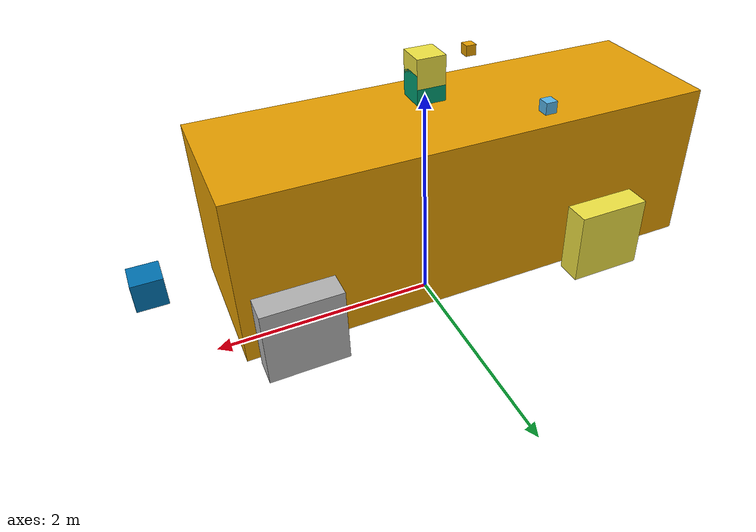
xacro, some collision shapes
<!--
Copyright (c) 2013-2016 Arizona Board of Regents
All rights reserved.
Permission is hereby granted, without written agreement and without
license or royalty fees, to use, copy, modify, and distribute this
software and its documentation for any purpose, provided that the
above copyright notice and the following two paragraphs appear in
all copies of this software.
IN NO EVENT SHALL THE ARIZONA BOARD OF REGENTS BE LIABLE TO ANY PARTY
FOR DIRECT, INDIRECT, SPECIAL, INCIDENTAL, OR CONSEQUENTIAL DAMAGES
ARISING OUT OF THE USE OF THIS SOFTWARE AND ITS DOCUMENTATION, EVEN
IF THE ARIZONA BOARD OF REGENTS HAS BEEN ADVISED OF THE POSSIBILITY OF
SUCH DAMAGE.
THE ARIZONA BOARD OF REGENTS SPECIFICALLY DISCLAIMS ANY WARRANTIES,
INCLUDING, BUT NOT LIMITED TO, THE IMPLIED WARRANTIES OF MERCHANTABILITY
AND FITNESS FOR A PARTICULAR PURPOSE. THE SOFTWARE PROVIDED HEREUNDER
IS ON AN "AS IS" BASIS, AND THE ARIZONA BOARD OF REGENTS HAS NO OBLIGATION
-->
<?xml version="1.0" ?>

<!-- Inertial parameters selected with the help of
http://www.car-engineer.com/vehicle-inertia-calculation-tool/
-->

<robot name="$(arg roboname)" xmlns:xacro="http://www.ros.org/wiki/xacro">

  <xacro:arg name="camera_left" default="true"/>
  <xacro:arg name="camera_right" default="true"/>
  <xacro:arg name="velodyne_points" default="true"/>
  <xacro:arg name="front_laser_points" default="true"/>

  <xacro:property name="PI" value="3.1415926835897931"/>
  <xacro:property name="base_height" value="1.0639"/>
  <xacro:property name="base_collision_height" value="1.3639"/>
  <xacro:property name="base_mass" value="2050"/>
  <xacro:property name="base_mass_ixx" value="647"/>
  <xacro:property name="base_mass_iyy" value="3291"/>
  <xacro:property name="base_mass_izz" value="3360"/>
  <xacro:property name="base_mass_ixz" value="-31"/>
  <xacro:property name="tyre_x" value="1.41"/>
  <xacro:property name="tyre_y" value="0.765"/>
  <xacro:property name="tyre_length" value="0.229"/>
  <xacro:property name="tyre_r" value="0.66"/>
  <xacro:property name="tyre_radius" value="0.356"/>
  <xacro:property name="tyre_mass" value="40"/>

  <xacro:property name="tyre_mass_ixx" value="2.0"/>
  <xacro:property name="tyre_mass_iyy" value="2.0"/>
  <xacro:property name="tyre_mass_izz" value="2.0"/>

  <xacro:property name="car_height" value="1.4478"/>
  <xacro:property name="car_to_bumper" value="2.4"/>
  <xacro:property name="front_bumper_height" value="${car_height/2}"/>
  <xacro:property name="sensor_box" value="0.25"/>
  <xacro:property name="sensor_box2" value="0.01"/>
  <xacro:property name="camera_box" value="0.1"/>
  <xacro:property name="tyre_height" value="-0.696"/>
  <xacro:property name="str_length" value="0.01"/>
  <xacro:property name="str_radius" value="0.1"/>
  <xacro:property name="str_angle" value="0.6"/>
  <xacro:property name="car_width" value="1.301"/>
  <xacro:property name="front_laser_points" value="$(arg front_laser_points)"/>
  <xacro:property name="velodyne_points" value="$(arg velodyne_points)"/>
  <xacro:property name="camera_right" value="$(arg camera_right)"/>
  <xacro:property name="camera_left" value="$(arg camera_left)"/>
  <xacro:property name="tyre_origin">
	<origin xyz="0 0 0" rpy="${PI/2} 0 0"/>
  </xacro:property>
  <xacro:property name="tyre_origin_2">
        <origin xyz="0 0 0" rpy="0 0 ${PI/2}"/>
  </xacro:property>
  <xacro:property name="tyre_origin_3">
        <origin xyz="0 0 0" rpy="0 0 ${-PI/2}"/>
  </xacro:property>

	<xacro:include filename="$(find catvehicle)/urdf/catvehicle.gazebo"/>
    <xacro:if value="${front_laser_points}">
    	<xacro:include filename="$(find catvehicle)/urdf/catvehicle_front_laser_points.gazebo"/>
    </xacro:if>
    <xacro:if value="${velodyne_points}">
      <!-- You can pass parameters in order to change the max/min
           horizontal angles of the velodyne sensors. These are interpreted
           in the velodyne_points gazebo file -->
      <xacro:arg name="velodyne_min_angle" default="-0.4"/>
      <xacro:arg name="velodyne_max_angle" default="0.4"/>
      <xacro:property name="velodyne_min_angle" value="$(arg velodyne_min_angle)"/>
      <xacro:property name="velodyne_max_angle" value="$(arg velodyne_max_angle)"/>

    	<xacro:include filename="$(find catvehicle)/urdf/catvehicle_velodyne_points.gazebo"/>
    </xacro:if>
    <xacro:if value="${camera_right}">
    	<xacro:include filename="$(find catvehicle)/urdf/catvehicle_right_camera.gazebo"/>
    </xacro:if>
    <xacro:if value="${camera_left}">
    	<xacro:include filename="$(find catvehicle)/urdf/catvehicle_left_camera.gazebo"/>
    </xacro:if>

<!--Car Body-->

<link name="base_link">
    <collision>
         <origin xyz="0 0 ${base_collision_height}" rpy="0 0 0"/>
           <geometry>
            <box size="4.192 ${car_width} ${car_height}"/>
        </geometry>
      </collision>
     <visual>
        <origin xyz="-0.25 0 ${base_height + 0.05}" rpy="0 0 0"/>
        <geometry>
          <box size="4.192 ${car_width} ${car_height}"/>
        </geometry>
     </visual>
</link>

<joint name="inertial_joint" type="fixed">
      <parent link="base_link"/>
      <child link="main_mass"/>
      <origin xyz="0 0 0" rpy="0 0 0"/>
</joint>

<link name="main_mass" type="fixed">
     <parent link="inertial_joint"/>
     <inertial>
        <origin xyz="0 0 ${base_height}" rpy="0 0 0"/>
        <mass value="${base_mass}"/>
        <inertia
          ixx="${base_mass_ixx}"  ixy="0.000000" ixz="${base_mass_ixz}"
          iyy="${base_mass_iyy}" iyz="0.000000"
          izz="${base_mass_izz}"/>
      </inertial>
</link>

<!--Back Right Wheel-->

<joint name="back_right_wheel_joint" type="continuous">
      <parent link="base_link"/>
      <child link="back_right_wheel_link"/>
      <origin xyz="${-tyre_x} ${-tyre_y} ${tyre_r}" rpy="0 0 0"/>
      <axis xyz="0 1 0"/>
      <dynamics damping="0.1"/>
     <limit effort="100000" velocity="10000" />
      <joint_properties damping="0.0" friction="0.0" />
</joint>

<link name="back_right_wheel_link">
     <collision>
      <xacro:insert_block name="tyre_origin"/>
        <geometry>
         <cylinder length="${tyre_length}" radius="${tyre_radius}"/>
        </geometry>
     </collision>

     <visual>
         <origin xyz="0 0 0" rpy="${PI/2} 0 0"/>
      <xacro:insert_block name="tyre_origin_3"/>
        <geometry>
          <box size="${tyre_r} ${tyre_r} ${tyre_length}"/>
      <scale xyz="1.2 1 1"/>
        </geometry>
      </visual>

      <inertial>
        <origin xyz="0 0 0" rpy="0 0 0"/>
        <mass value="${tyre_mass}"/>
        <inertia
          ixx="${tyre_mass_ixx}"  ixy="0.000000"  ixz="0.000000"
          iyy="${tyre_mass_iyy}"  iyz="0.000000"
          izz="${tyre_mass_izz}"/>
      </inertial>
</link>

<!--Back Left Wheel-->

<joint name="back_left_wheel_joint" type="continuous">
      <parent link="base_link"/>
      <child link="back_left_wheel_link"/>
      <origin xyz="${-tyre_x} ${tyre_y} ${tyre_r}" rpy="0 0 0"/>
      <axis xyz="0 1 0"/>
      <dynamics damping="0.1"/>
      <limit effort="100000" velocity="10000" />
      <joint_properties damping="0.0" friction="0.0" />
</joint>

<link name="back_left_wheel_link">
     <collision>
      <xacro:insert_block name="tyre_origin"/>
        <geometry>
         <cylinder length="0.229" radius="${tyre_radius}"/>
        </geometry>
     </collision>

     <visual>
         <origin xyz="0 0 0" rpy="${PI/2} 0 0"/>
      <xacro:insert_block name="tyre_origin_2"/>
        <geometry>
          <box size="${tyre_r} ${tyre_r} ${tyre_length}"/>
          <scale xyz="1.2 1 1"/>
        </geometry>
      </visual>

      <inertial>
        <origin xyz="0 0 0" rpy="0 0 0"/>
        <mass value="${tyre_mass}"/>
        <inertia
          ixx="${tyre_mass_ixx}"  ixy="0.000000"  ixz="0.000000"
          iyy="${tyre_mass_iyy}"  iyz="0.000000"
          izz="${tyre_mass_izz}"/>
      </inertial>
</link>

<!--Right Steering-->

<joint name="front_right_steering_joint" type="revolute">
	<parent link="base_link"/>
	<child link="front_right_steering_link"/>
	<origin xyz="${tyre_x} ${-car_width/2 - str_length/2} ${tyre_r}" rpy="0 0 0"/>
        <axis xyz="0 0 1"/>
	<limit effort="1000.0" lower="${-str_angle}" upper="${str_angle}" velocity="10.0"/>
</joint>

<link name="front_right_steering_link">
	<collision>
	      <xacro:insert_block name="tyre_origin"/>
	        <geometry>
        	 <cylinder length="${str_length}" radius="${str_radius}"/>
       		</geometry>
	</collision>

	<visual>
              <xacro:insert_block name="tyre_origin"/>
                <geometry>
                 <cylinder length="${str_length}" radius="${str_radius}"/>
                </geometry>
	</visual>

      <inertial>
        <origin xyz="0 0 0" rpy="0 0 0"/>
        <mass value="10.00"/>
        <inertia
          ixx="0.4"  ixy="0.000000"  ixz="0.000000"
          iyy="0.6"  iyz="0.000000"
          izz="0.4"/>
      </inertial>
</link>

<!--Right Front Wheel-->

<joint name="front_right_wheel_joint" type="continuous">
      <parent link="front_right_steering_link"/>
      <child link="front_right_wheel_link"/>
      <origin xyz="0 ${-str_length/2 - tyre_length/2} 0" rpy="0 0 0"/>
      <axis xyz="0 1 0"/>
      <dynamics damping="0.1"/>
     <limit effort="1000000" velocity="10000" />
      <joint_properties damping="0.0" friction="0.0" />
</joint>

<link name="front_right_wheel_link">
     <collision>
      <xacro:insert_block name="tyre_origin"/>
        <geometry>
         <cylinder length="${tyre_length}" radius="${tyre_radius}"/>
	</geometry>
     </collision>

     <visual>
         <origin xyz="0 0 0" rpy="${PI/2} 0 0"/>
      <xacro:insert_block name="tyre_origin_3"/>
        <geometry>
          <box size="${tyre_r} ${tyre_r} ${tyre_length}"/>
        <scale xyz="1.2 1 1"/>
       </geometry>
      </visual>

      <inertial>
        <origin xyz="0 0 0" rpy="0 0 0"/>
        <mass value="${tyre_mass}"/>
        <inertia
          ixx="${tyre_mass_ixx}"  ixy="0.000000"  ixz="0.000000"
          iyy="${tyre_mass_iyy}"  iyz="0.000000"
          izz="${tyre_mass_izz}"/>
      </inertial>
</link>

<!--Left Steering-->

<joint name="front_left_steering_joint" type="revolute">
        <parent link="base_link"/>
        <child link="front_left_steering_link"/>
        <origin xyz="${tyre_x} ${car_width/2 + str_length/2} ${tyre_r}" rpy="0 0 0"/>
        <axis xyz="0 0 1"/>
        <limit effort="1000.0" lower="${-str_angle}" upper="${str_angle}" velocity="10.0"/>
</joint>

<link name="front_left_steering_link">
      <parent link="base_link"/>
        <collision>
              <xacro:insert_block name="tyre_origin"/>
                <geometry>
                 <cylinder length="${str_length}" radius="${str_radius}"/>
                </geometry>
        </collision>

        <visual>
              <xacro:insert_block name="tyre_origin"/>
                <geometry>
                 <cylinder length="${str_length}" radius="${str_radius}"/>
                </geometry>
        </visual>

      <inertial>
        <origin xyz="0 0 0" rpy="0 0 0"/>
        <mass value="10.00"/>
        <inertia
          ixx="0.4"  ixy="0.000000"  ixz="0.000000"
          iyy="0.6"  iyz="0.000000"
          izz="0.4"/>
      </inertial>
</link>

<!--Left Front Wheel-->

<joint name="front_left_wheel_joint" type="continuous">
      <parent link="front_left_steering_link"/>
      <child link="front_left_wheel_link"/>
      <origin xyz="0 ${str_length/2 + tyre_length/2} 0" rpy="0 0 0"/>
      <axis xyz="0 1 0"/>

      <dynamics damping="0.1"/>
      <limit effort="1000000" velocity="10000" />
      <joint_properties damping="0.0" friction="0.0" />

</joint>

<link name="front_left_wheel_link">
     <parent link="front_left_wheel_joint"/>
     <collision>
	<origin xyz="0 0 0" rpy="${PI/2} 0 0"/>
        <geometry>
         <cylinder length="0.229" radius="${tyre_radius}"/>
        </geometry>
     </collision>

     <visual>
      <origin xyz="0 0 0" rpy="${PI/2} 0 0"/>
      <xacro:insert_block name="tyre_origin_2"/>
       <geometry>
          <box size="${tyre_r} ${tyre_r} ${tyre_length}"/>
          <scale xyz="1.2 1 1"/>
       </geometry>
      </visual>

      <inertial>
        <origin xyz="0 0 0" rpy="0 0 0"/>
        <mass value="${tyre_mass}"/>
        <inertia
          ixx="${tyre_mass_ixx}"  ixy="0.000000"  ixz="0.000000"
          iyy="${tyre_mass_iyy}"  iyz="0.000000"
          izz="${tyre_mass_izz}"/>
      </inertial>
</link>

<!-- Cameras-->

<joint name="camera_right_joint" type="fixed">
<origin xyz="-0.75 -${car_width/2} ${0.725 + camera_box/2 + 1.25}" rpy="0 0 -${PI/2}"/>
	<axis xyz="0 0 1"/>
	<parent link="base_link"/>
	<child link="camera_right_link"/>
</joint>

<link name="camera_right_link">
	<collision>
	  <origin xyz="0 0 0" rpy="0 0 0"/>
	  <geometry>
	   <box size="${camera_box} ${camera_box} ${camera_box}"/>
	  </geometry>
	</collision>

	<visual>
	  <origin xyz="0 0 0" rpy="0 0 0"/>
	  <geometry>
	  <box size="${camera_box} ${camera_box} ${camera_box}"
/>
          </geometry>
	</visual>

    <inertial>
      <mass value="1e-5" />
      <origin xyz="0 0 0" rpy="0 0 0"/>
      <inertia ixx="1e-6" ixy="0" ixz="0" iyy="1e-6" iyz="0" izz="1e-6" />
    </inertial>
</link>

<joint name="camera_left_joint" type="fixed">
<origin xyz="-0.75 ${car_width/2} ${0.725 + camera_box/2 + 1.25}" rpy="0 0 ${PI/2}"/>
	<axis xyz="0 0 1"/>
	<parent link="base_link"/>
	<child link="camera_left_link"/>
</joint>

<link name="camera_left_link">
	<collision>
	  <origin xyz="0 0 0" rpy="0 0 0"/>
	  <geometry>
	   <box size="${camera_box} ${camera_box} ${camera_box}"/>
	  </geometry>
	</collision>

	<visual>
	  <origin xyz="0 0 0" rpy="0 0 0"/>
	  <geometry>
	  <box size="${camera_box} ${camera_box} ${camera_box}"
/>
          </geometry>
	</visual>

    <inertial>
      <mass value="1e-5" />
      <origin xyz="0 0 0" rpy="0 0 0"/>
      <inertia ixx="1e-6" ixy="0" ixz="0" iyy="1e-6" iyz="0" izz="1e-6" />
    </inertial>
</link>

<joint name="camera_joint" type="fixed">
<origin xyz="0 0 ${0.725 + sensor_box/2 + 1.25}" rpy="0 0 0"/>
	<axis xyz="0 0 1"/>
	<parent link="base_link"/>
	<child link="camera_link"/>
</joint>

<link name="camera_link">
	<collision>
	  <origin xyz="0 0 0" rpy="0 0 0"/>
	  <geometry>
	   <box size="${sensor_box} ${sensor_box} ${sensor_box}"/>
	  </geometry>
	</collision>

	<visual>
	  <origin xyz="0 0 0" rpy="0 0 0"/>
	  <geometry>
	  <box size="${sensor_box} ${sensor_box} ${sensor_box}"
/>
          </geometry>
	</visual>

    <inertial>
      <mass value="1e-5" />
      <origin xyz="0 0 0" rpy="0 0 0"/>
      <inertia ixx="1e-6" ixy="0" ixz="0" iyy="1e-6" iyz="0" izz="1e-6" />
    </inertial>
</link>

<!--Velodyne LIDAR-->

<joint name="velodyne_joint" type="fixed">
	<origin xyz="0 0 ${sensor_box/2 + 0.01}" rpy="0 0 0"/>
	<axis xyz="0 0 1"/>
	<parent link="camera_link"/>
	<child link="velodyne_link"/>
</joint>

<link name="velodyne_link">
        <collision>
          <origin xyz="0 0 0" rpy="0 0 0"/>
          <geometry>
           <box size="${sensor_box} ${sensor_box} ${sensor_box}"/>
          </geometry>
        </collision>

        <visual>
          <origin xyz="0 0 0" rpy="0 0 0"/>
          <geometry>
           <mesh filename="package://catvehicle/meshes/hokuyo.dae"/>
          </geometry>
        </visual>

    <inertial>
      <mass value="1e-5" />
      <origin xyz="0 0 0" rpy="0 0 0"/>
      <inertia ixx="1e-6" ixy="0" ixz="0" iyy="1e-6" iyz="0" izz="1e-6" />
    </inertial>
</link>

<joint name="front_laser_joint" type="fixed">
	<origin xyz="${car_to_bumper} 0 ${front_bumper_height + sensor_box/2 + 0.01}" rpy="0 0 0"/>
	<axis xyz="0 0 1"/>
	<parent link="base_link"/>
	<child link="front_laser_link"/>
</joint>

<link name="front_laser_link">
     <parent link="front_laser_joint"/>
        <collision>
          <origin xyz="0 0 0" rpy="0 0.0 0"/>
          <geometry>
           <box size="${sensor_box} ${sensor_box} ${sensor_box}"/>
          </geometry>
        </collision>

        <visual>
          <origin xyz="0 0 0" rpy="0 0 0"/>
          <geometry>
           <box size="${sensor_box} ${sensor_box} ${sensor_box}"/>
          </geometry>
        </visual>

    <inertial>
      <mass value="1e-5" />
      <origin xyz="0 0 0" rpy="0 0 0"/>
      <inertia ixx="1e-6" ixy="0" ixz="0" iyy="1e-6" iyz="0" izz="1e-6" />
    </inertial>
</link>

<!-- motors and transmissions for the two rear wheels -->
  <transmission name="tran1">
    <type>transmission_interface/SimpleTransmission</type>
    <joint name="back_right_wheel_joint">
      <hardwareInterface>hardware_interface/VelocityJointInterface</hardwareInterface>
    </joint>
    <actuator name="motor1">
      <hardwareInterface>hardware_interface/VelocityJointInterface</hardwareInterface>
      <mechanicalReduction>1</mechanicalReduction>
    </actuator>
  </transmission>

  <transmission name="tran2">
    <type>transmission_interface/SimpleTransmission</type>
    <joint name="back_left_wheel_joint">
      <hardwareInterface>hardware_interface/VelocityJointInterface</hardwareInterface>
    </joint>
    <actuator name="motor2">
      <hardwareInterface>hardware_interface/VelocityJointInterface</hardwareInterface>
      <mechanicalReduction>1</mechanicalReduction>
    </actuator>
  </transmission>

  <transmission name="rack_and_pinion_left">
    <type>transmission_interface/SimpleTransmission</type>
    <joint name="front_left_steering_joint">
      <hardwareInterface>PositionJointInterface</hardwareInterface>
    </joint>
    <actuator name="eps_left">
      <hardwareInterface>PositionJointInterface</hardwareInterface>
      <mechanicalReduction>1</mechanicalReduction>
    </actuator>
  </transmission>

  <transmission name="rack_and_pinion_right">
    <type>transmission_interface/SimpleTransmission</type>
    <joint name="front_right_steering_joint">
      <hardwareInterface>PositionJointInterface</hardwareInterface>
    </joint>
    <actuator name="eps_right">
      <hardwareInterface>PositionJointInterface</hardwareInterface>
      <mechanicalReduction>1</mechanicalReduction>
    </actuator>
  </transmission>

</robot>
